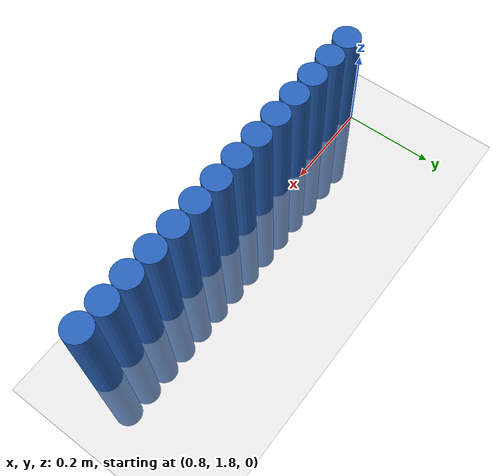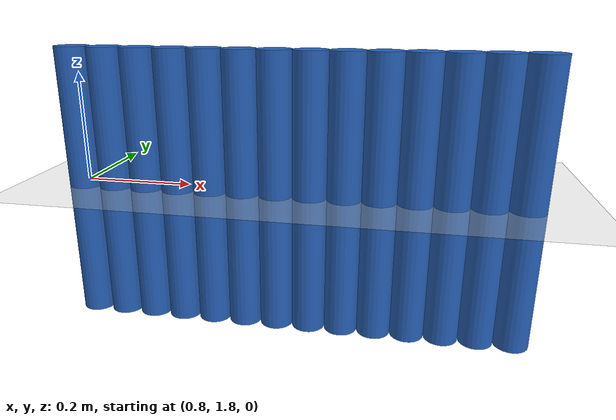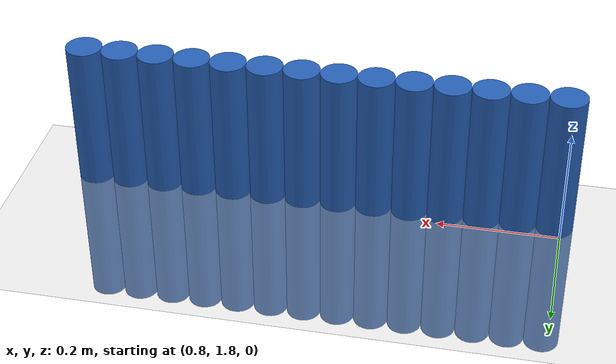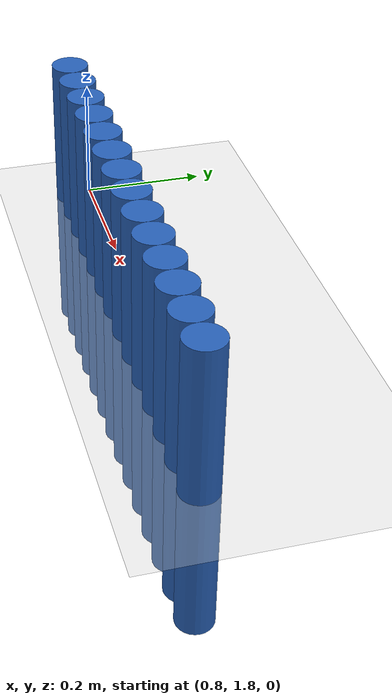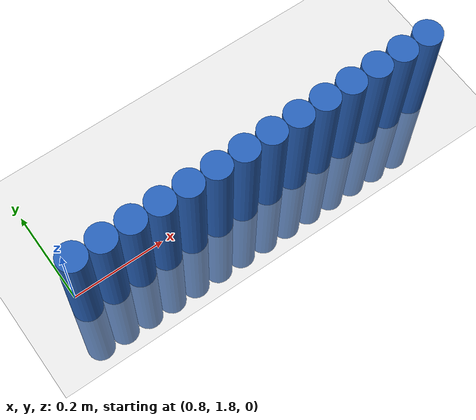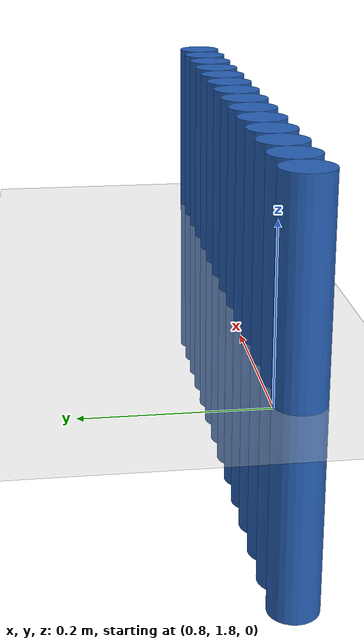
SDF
<sdf version="1.6">
 <world name="default">
  <model name="ground_plane">
   <static>1</static>
   <link name="link">
    <collision name="collision">
     <geometry><plane><normal>0 0 1</normal><size>100 100</size></plane></geometry>
     <surface><friction><ode><mu>100</mu><mu2>50</mu2></ode></friction></surface>
    </collision>
    <visual name="visual">
     <cast_shadows>0</cast_shadows>
     <geometry><plane><normal>0 0 1</normal><size>100 100</size></plane></geometry>
     <material>
      <script><uri>file://media/materials/scripts/gazebo.material</uri><name>Gazebo/Grey</name></script>
     </material>
    </visual>
   </link>
  </model>
  <model name="unit_cylinder_54">
   <static>1</static>
   <pose>0.810000 1.770000 0.000000 0.000000 0.000000 0.000000</pose>
   <link name="link">
    <inertial>
     <mass>1</mass>
     <inertia><ixx>0.145833</ixx><ixy>0</ixy><ixz>0</ixz><iyy>0.145833</iyy><iyz>0</iyz><izz>0.125</izz></inertia>
    </inertial>
    <collision name="collision">
     <geometry><cylinder><radius>0.030000</radius><length>0.5</length></cylinder></geometry>
    </collision>
    <visual name="visual">
     <geometry><cylinder><radius>0.030000</radius><length>0.5</length></cylinder></geometry>
     <material>
      <ambient>0.152000 0.379000 0.720000 1</ambient>
      <diffuse>0.152000 0.379000 0.720000 1</diffuse>
     </material>
     <material>
      <script><name>Gazebo/Grey</name><uri>file://media/materials/scripts/gazebo.material</uri></script>
     </material>
    </visual>
   </link>
  </model>
  <model name="unit_cylinder_56">
   <static>1</static>
   <pose>0.870000 1.770000 0.000000 0.000000 0.000000 0.000000</pose>
   <link name="link">
    <inertial>
     <mass>1</mass>
     <inertia><ixx>0.145833</ixx><ixy>0</ixy><ixz>0</ixz><iyy>0.145833</iyy><iyz>0</iyz><izz>0.125</izz></inertia>
    </inertial>
    <collision name="collision">
     <geometry><cylinder><radius>0.030000</radius><length>0.5</length></cylinder></geometry>
    </collision>
    <visual name="visual">
     <geometry><cylinder><radius>0.030000</radius><length>0.5</length></cylinder></geometry>
     <material>
      <ambient>0.152000 0.379000 0.720000 1</ambient>
      <diffuse>0.152000 0.379000 0.720000 1</diffuse>
     </material>
     <material>
      <script><name>Gazebo/Grey</name><uri>file://media/materials/scripts/gazebo.material</uri></script>
     </material>
    </visual>
   </link>
  </model>
  <model name="unit_cylinder_58">
   <static>1</static>
   <pose>0.930000 1.770000 0.000000 0.000000 0.000000 0.000000</pose>
   <link name="link">
    <inertial>
     <mass>1</mass>
     <inertia><ixx>0.145833</ixx><ixy>0</ixy><ixz>0</ixz><iyy>0.145833</iyy><iyz>0</iyz><izz>0.125</izz></inertia>
    </inertial>
    <collision name="collision">
     <geometry><cylinder><radius>0.030000</radius><length>0.5</length></cylinder></geometry>
    </collision>
    <visual name="visual">
     <geometry><cylinder><radius>0.030000</radius><length>0.5</length></cylinder></geometry>
     <material>
      <ambient>0.152000 0.379000 0.720000 1</ambient>
      <diffuse>0.152000 0.379000 0.720000 1</diffuse>
     </material>
     <material>
      <script><name>Gazebo/Grey</name><uri>file://media/materials/scripts/gazebo.material</uri></script>
     </material>
    </visual>
   </link>
  </model>
  <model name="unit_cylinder_60">
   <static>1</static>
   <pose>0.990000 1.770000 0.000000 0.000000 0.000000 0.000000</pose>
   <link name="link">
    <inertial>
     <mass>1</mass>
     <inertia><ixx>0.145833</ixx><ixy>0</ixy><ixz>0</ixz><iyy>0.145833</iyy><iyz>0</iyz><izz>0.125</izz></inertia>
    </inertial>
    <collision name="collision">
     <geometry><cylinder><radius>0.030000</radius><length>0.5</length></cylinder></geometry>
    </collision>
    <visual name="visual">
     <geometry><cylinder><radius>0.030000</radius><length>0.5</length></cylinder></geometry>
     <material>
      <ambient>0.152000 0.379000 0.720000 1</ambient>
      <diffuse>0.152000 0.379000 0.720000 1</diffuse>
     </material>
     <material>
      <script><name>Gazebo/Grey</name><uri>file://media/materials/scripts/gazebo.material</uri></script>
     </material>
    </visual>
   </link>
  </model>
  <model name="unit_cylinder_62">
   <static>1</static>
   <pose>1.050000 1.770000 0.000000 0.000000 0.000000 0.000000</pose>
   <link name="link">
    <inertial>
     <mass>1</mass>
     <inertia><ixx>0.145833</ixx><ixy>0</ixy><ixz>0</ixz><iyy>0.145833</iyy><iyz>0</iyz><izz>0.125</izz></inertia>
    </inertial>
    <collision name="collision">
     <geometry><cylinder><radius>0.030000</radius><length>0.5</length></cylinder></geometry>
    </collision>
    <visual name="visual">
     <geometry><cylinder><radius>0.030000</radius><length>0.5</length></cylinder></geometry>
     <material>
      <ambient>0.152000 0.379000 0.720000 1</ambient>
      <diffuse>0.152000 0.379000 0.720000 1</diffuse>
     </material>
     <material>
      <script><name>Gazebo/Grey</name><uri>file://media/materials/scripts/gazebo.material</uri></script>
     </material>
    </visual>
   </link>
  </model>
  <model name="unit_cylinder_64">
   <static>1</static>
   <pose>1.110000 1.770000 0.000000 0.000000 0.000000 0.000000</pose>
   <link name="link">
    <inertial>
     <mass>1</mass>
     <inertia><ixx>0.145833</ixx><ixy>0</ixy><ixz>0</ixz><iyy>0.145833</iyy><iyz>0</iyz><izz>0.125</izz></inertia>
    </inertial>
    <collision name="collision">
     <geometry><cylinder><radius>0.030000</radius><length>0.5</length></cylinder></geometry>
    </collision>
    <visual name="visual">
     <geometry><cylinder><radius>0.030000</radius><length>0.5</length></cylinder></geometry>
     <material>
      <ambient>0.152000 0.379000 0.720000 1</ambient>
      <diffuse>0.152000 0.379000 0.720000 1</diffuse>
     </material>
     <material>
      <script><name>Gazebo/Grey</name><uri>file://media/materials/scripts/gazebo.material</uri></script>
     </material>
    </visual>
   </link>
  </model>
  <model name="unit_cylinder_66">
   <static>1</static>
   <pose>1.170000 1.770000 0.000000 0.000000 0.000000 0.000000</pose>
   <link name="link">
    <inertial>
     <mass>1</mass>
     <inertia><ixx>0.145833</ixx><ixy>0</ixy><ixz>0</ixz><iyy>0.145833</iyy><iyz>0</iyz><izz>0.125</izz></inertia>
    </inertial>
    <collision name="collision">
     <geometry><cylinder><radius>0.030000</radius><length>0.5</length></cylinder></geometry>
    </collision>
    <visual name="visual">
     <geometry><cylinder><radius>0.030000</radius><length>0.5</length></cylinder></geometry>
     <material>
      <ambient>0.152000 0.379000 0.720000 1</ambient>
      <diffuse>0.152000 0.379000 0.720000 1</diffuse>
     </material>
     <material>
      <script><name>Gazebo/Grey</name><uri>file://media/materials/scripts/gazebo.material</uri></script>
     </material>
    </visual>
   </link>
  </model>
  <model name="unit_cylinder_68">
   <static>1</static>
   <pose>1.230000 1.770000 0.000000 0.000000 0.000000 0.000000</pose>
   <link name="link">
    <inertial>
     <mass>1</mass>
     <inertia><ixx>0.145833</ixx><ixy>0</ixy><ixz>0</ixz><iyy>0.145833</iyy><iyz>0</iyz><izz>0.125</izz></inertia>
    </inertial>
    <collision name="collision">
     <geometry><cylinder><radius>0.030000</radius><length>0.5</length></cylinder></geometry>
    </collision>
    <visual name="visual">
     <geometry><cylinder><radius>0.030000</radius><length>0.5</length></cylinder></geometry>
     <material>
      <ambient>0.152000 0.379000 0.720000 1</ambient>
      <diffuse>0.152000 0.379000 0.720000 1</diffuse>
     </material>
     <material>
      <script><name>Gazebo/Grey</name><uri>file://media/materials/scripts/gazebo.material</uri></script>
     </material>
    </visual>
   </link>
  </model>
  <model name="unit_cylinder_70">
   <static>1</static>
   <pose>1.290000 1.770000 0.000000 0.000000 0.000000 0.000000</pose>
   <link name="link">
    <inertial>
     <mass>1</mass>
     <inertia><ixx>0.145833</ixx><ixy>0</ixy><ixz>0</ixz><iyy>0.145833</iyy><iyz>0</iyz><izz>0.125</izz></inertia>
    </inertial>
    <collision name="collision">
     <geometry><cylinder><radius>0.030000</radius><length>0.5</length></cylinder></geometry>
    </collision>
    <visual name="visual">
     <geometry><cylinder><radius>0.030000</radius><length>0.5</length></cylinder></geometry>
     <material>
      <ambient>0.152000 0.379000 0.720000 1</ambient>
      <diffuse>0.152000 0.379000 0.720000 1</diffuse>
     </material>
     <material>
      <script><name>Gazebo/Grey</name><uri>file://media/materials/scripts/gazebo.material</uri></script>
     </material>
    </visual>
   </link>
  </model>
  <model name="unit_cylinder_72">
   <static>1</static>
   <pose>1.350000 1.770000 0.000000 0.000000 0.000000 0.000000</pose>
   <link name="link">
    <inertial>
     <mass>1</mass>
     <inertia><ixx>0.145833</ixx><ixy>0</ixy><ixz>0</ixz><iyy>0.145833</iyy><iyz>0</iyz><izz>0.125</izz></inertia>
    </inertial>
    <collision name="collision">
     <geometry><cylinder><radius>0.030000</radius><length>0.5</length></cylinder></geometry>
    </collision>
    <visual name="visual">
     <geometry><cylinder><radius>0.030000</radius><length>0.5</length></cylinder></geometry>
     <material>
      <ambient>0.152000 0.379000 0.720000 1</ambient>
      <diffuse>0.152000 0.379000 0.720000 1</diffuse>
     </material>
     <material>
      <script><name>Gazebo/Grey</name><uri>file://media/materials/scripts/gazebo.material</uri></script>
     </material>
    </visual>
   </link>
  </model>
  <model name="unit_cylinder_74">
   <static>1</static>
   <pose>1.410000 1.770000 0.000000 0.000000 0.000000 0.000000</pose>
   <link name="link">
    <inertial>
     <mass>1</mass>
     <inertia><ixx>0.145833</ixx><ixy>0</ixy><ixz>0</ixz><iyy>0.145833</iyy><iyz>0</iyz><izz>0.125</izz></inertia>
    </inertial>
    <collision name="collision">
     <geometry><cylinder><radius>0.030000</radius><length>0.5</length></cylinder></geometry>
    </collision>
    <visual name="visual">
     <geometry><cylinder><radius>0.030000</radius><length>0.5</length></cylinder></geometry>
     <material>
      <ambient>0.152000 0.379000 0.720000 1</ambient>
      <diffuse>0.152000 0.379000 0.720000 1</diffuse>
     </material>
     <material>
      <script><name>Gazebo/Grey</name><uri>file://media/materials/scripts/gazebo.material</uri></script>
     </material>
    </visual>
   </link>
  </model>
  <model name="unit_cylinder_76">
   <static>1</static>
   <pose>1.470000 1.770000 0.000000 0.000000 0.000000 0.000000</pose>
   <link name="link">
    <inertial>
     <mass>1</mass>
     <inertia><ixx>0.145833</ixx><ixy>0</ixy><ixz>0</ixz><iyy>0.145833</iyy><iyz>0</iyz><izz>0.125</izz></inertia>
    </inertial>
    <collision name="collision">
     <geometry><cylinder><radius>0.030000</radius><length>0.5</length></cylinder></geometry>
    </collision>
    <visual name="visual">
     <geometry><cylinder><radius>0.030000</radius><length>0.5</length></cylinder></geometry>
     <material>
      <ambient>0.152000 0.379000 0.720000 1</ambient>
      <diffuse>0.152000 0.379000 0.720000 1</diffuse>
     </material>
     <material>
      <script><name>Gazebo/Grey</name><uri>file://media/materials/scripts/gazebo.material</uri></script>
     </material>
    </visual>
   </link>
  </model>
  <model name="unit_cylinder_78">
   <static>1</static>
   <pose>1.530000 1.770000 0.000000 0.000000 0.000000 0.000000</pose>
   <link name="link">
    <inertial>
     <mass>1</mass>
     <inertia><ixx>0.145833</ixx><ixy>0</ixy><ixz>0</ixz><iyy>0.145833</iyy><iyz>0</iyz><izz>0.125</izz></inertia>
    </inertial>
    <collision name="collision">
     <geometry><cylinder><radius>0.030000</radius><length>0.5</length></cylinder></geometry>
    </collision>
    <visual name="visual">
     <geometry><cylinder><radius>0.030000</radius><length>0.5</length></cylinder></geometry>
     <material>
      <ambient>0.152000 0.379000 0.720000 1</ambient>
      <diffuse>0.152000 0.379000 0.720000 1</diffuse>
     </material>
     <material>
      <script><name>Gazebo/Grey</name><uri>file://media/materials/scripts/gazebo.material</uri></script>
     </material>
    </visual>
   </link>
  </model>
  <model name="unit_cylinder_80">
   <static>1</static>
   <pose>1.590000 1.770000 0.000000 0.000000 0.000000 0.000000</pose>
   <link name="link">
    <inertial>
     <mass>1</mass>
     <inertia><ixx>0.145833</ixx><ixy>0</ixy><ixz>0</ixz><iyy>0.145833</iyy><iyz>0</iyz><izz>0.125</izz></inertia>
    </inertial>
    <collision name="collision">
     <geometry><cylinder><radius>0.030000</radius><length>0.5</length></cylinder></geometry>
    </collision>
    <visual name="visual">
     <geometry><cylinder><radius>0.030000</radius><length>0.5</length></cylinder></geometry>
     <material>
      <ambient>0.152000 0.379000 0.720000 1</ambient>
      <diffuse>0.152000 0.379000 0.720000 1</diffuse>
     </material>
     <material>
      <script><name>Gazebo/Grey</name><uri>file://media/materials/scripts/gazebo.material</uri></script>
     </material>
    </visual>
   </link>
  </model>
 </world>
</sdf>
